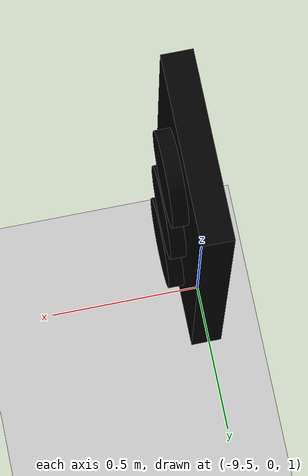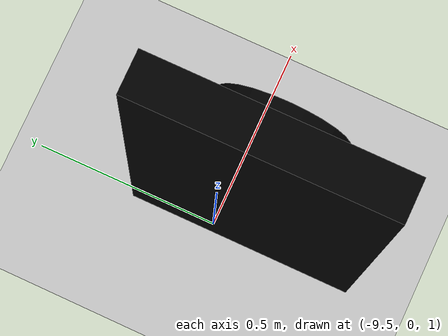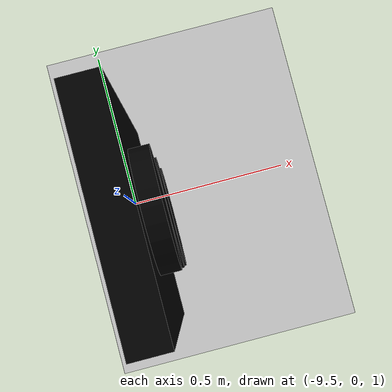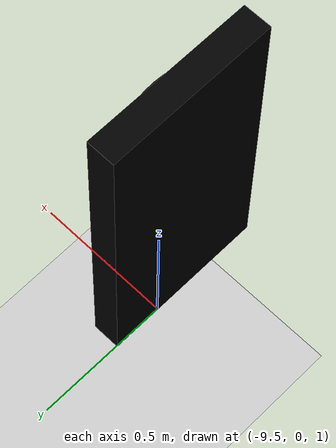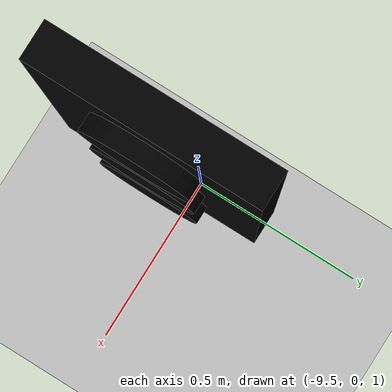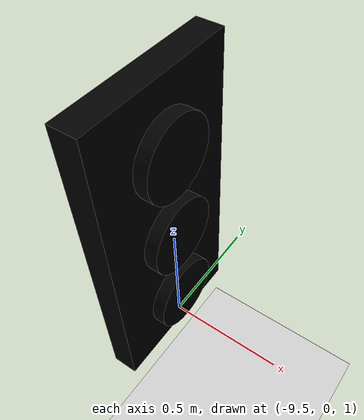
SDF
<sdf version="1.7">
 <world name="default">
  <light name="sun" type="directional">
   <pose>0 0 10 0 -0 0</pose>
   <diffuse>0.8 0.8 0.8 1</diffuse>
   <specular>0.2 0.2 0.2 1</specular>
   <attenuation>
    <range>1000</range>
    <constant>0.9</constant>
    <linear>0.01</linear>
    <quadratic>0.001</quadratic>
   </attenuation>
   <direction>-0.5 0.1 -0.9</direction>
   <spot><inner_angle>0</inner_angle><outer_angle>0</outer_angle><falloff>0</falloff></spot>
  </light>
  <model name="ground_plane">
   <static>1</static>
   <link name="link">
    <collision name="collision">
     <geometry><plane><normal>0 0 1</normal><size>100 100</size></plane></geometry>
     <surface>
      <contact><collide_bitmask>65535</collide_bitmask></contact>
      <friction><ode><mu>100</mu><mu2>50</mu2></ode></friction>
     </surface>
    </collision>
    <visual name="visual">
     <cast_shadows>0</cast_shadows>
     <geometry><plane><normal>0 0 1</normal><size>100 100</size></plane></geometry>
     <material>
      <script><uri>file://media/materials/scripts/gazebo.material</uri><name>Gazebo/Grey</name></script>
     </material>
    </visual>
   </link>
  </model>
  <model name="test_included_traffic_light">
   <pose>-9.48266 0.914428 1.16097 0.00106 -0.001055 -8e-06</pose>
   <plugin name="traffic_light_plugin" filename="libgazebo_traffic_light.so"/>
   <frame name="gazebo_traffic_light::__model__" attached_to="gazebo_traffic_light::light_fixture">
    <pose relative_to="__model__">0 -1 0 0 -0 0</pose>
   </frame>
   <static>0</static>
   <link name="gazebo_traffic_light::light_fixture">
    <gravity>0</gravity>
    <pose relative_to="gazebo_traffic_light::__model__">0 0 0 0 -0 0</pose>
    <visual name="visual">
     <pose>0 0 0.535 0 -0 0</pose>
     <geometry><box><size>0.1 0.6 1.2</size></box></geometry>
     <material><ambient>0 0 0 1</ambient><diffuse>0 0 0 1</diffuse><specular>0 0 0 1</specular></material>
    </visual>
    <collision name="collision">
     <pose>0 0 0.535 0 -0 0</pose>
     <geometry><box><size>0.1 0.6 1.2</size></box></geometry>
    </collision>
    <inertial>
     <inertia><ixx>1</ixx><ixy>0</ixy><ixz>0</ixz><iyy>1</iyy><iyz>0</iyz><izz>1</izz></inertia>
     <mass>1</mass>
    </inertial>
   </link>
   <link name="gazebo_traffic_light::green_off">
    <gravity>0</gravity>
    <pose relative_to="gazebo_traffic_light::__model__">0.075 0 0.175 0 1.5707 0</pose>
    <collision name="collision">
     <geometry><cylinder><radius>0.15</radius><length>0.05</length></cylinder></geometry>
    </collision>
    <visual name="visual">
     <geometry><cylinder><radius>0.15</radius><length>0.05</length></cylinder></geometry>
     <material>
      <ambient>0 1 0 1</ambient>
      <diffuse>0 0 0 1</diffuse>
      <specular>0 0 0 1</specular>
      <emissive>0 0 0 1</emissive>
     </material>
    </visual>
    <inertial>
     <inertia><ixx>1</ixx><ixy>0</ixy><ixz>0</ixz><iyy>1</iyy><iyz>0</iyz><izz>1</izz></inertia>
     <mass>1</mass>
    </inertial>
   </link>
   <link name="gazebo_traffic_light::green_on">
    <gravity>0</gravity>
    <pose relative_to="gazebo_traffic_light::__model__">0 0 0.175 0 1.5707 0</pose>
    <collision name="collision">
     <geometry><cylinder><radius>0.15</radius><length>0.002</length></cylinder></geometry>
    </collision>
    <visual name="visual">
     <geometry><cylinder><radius>0.15</radius><length>0.002</length></cylinder></geometry>
     <material>
      <ambient>0 0 0 1</ambient>
      <diffuse>0 0 0 1</diffuse>
      <specular>0 0 0 1</specular>
      <emissive>0 1 0 1</emissive>
     </material>
    </visual>
    <inertial>
     <inertia><ixx>1</ixx><ixy>0</ixy><ixz>0</ixz><iyy>1</iyy><iyz>0</iyz><izz>1</izz></inertia>
     <mass>1</mass>
    </inertial>
   </link>
   <link name="gazebo_traffic_light::yellow_off">
    <gravity>0</gravity>
    <pose relative_to="gazebo_traffic_light::__model__">0.075 0 0.525 0 1.5707 0</pose>
    <collision name="collision">
     <geometry><cylinder><radius>0.15</radius><length>0.05</length></cylinder></geometry>
    </collision>
    <visual name="visual">
     <geometry><cylinder><radius>0.15</radius><length>0.05</length></cylinder></geometry>
     <material>
      <ambient>1 1 0 1</ambient>
      <diffuse>0 0 0 1</diffuse>
      <specular>0 0 0 1</specular>
      <emissive>0 0 0 1</emissive>
     </material>
    </visual>
    <inertial>
     <inertia><ixx>1</ixx><ixy>0</ixy><ixz>0</ixz><iyy>1</iyy><iyz>0</iyz><izz>1</izz></inertia>
     <mass>1</mass>
    </inertial>
   </link>
   <link name="gazebo_traffic_light::yellow_on">
    <gravity>0</gravity>
    <pose relative_to="gazebo_traffic_light::__model__">0 0 0.525 0 1.5707 0</pose>
    <collision name="collision">
     <geometry><cylinder><radius>0.15</radius><length>0.002</length></cylinder></geometry>
    </collision>
    <visual name="visual">
     <geometry><cylinder><radius>0.15</radius><length>0.002</length></cylinder></geometry>
     <material>
      <ambient>0 0 0 1</ambient>
      <diffuse>0 0 0 1</diffuse>
      <specular>0 0 0 1</specular>
      <emissive>1 1 0 1</emissive>
     </material>
    </visual>
    <inertial>
     <inertia><ixx>1</ixx><ixy>0</ixy><ixz>0</ixz><iyy>1</iyy><iyz>0</iyz><izz>1</izz></inertia>
     <mass>1</mass>
    </inertial>
   </link>
   <link name="gazebo_traffic_light::red_off">
    <gravity>0</gravity>
    <pose relative_to="gazebo_traffic_light::__model__">0.075 0 0.875 0 1.5707 0</pose>
    <collision name="collision">
     <geometry><cylinder><radius>0.15</radius><length>0.05</length></cylinder></geometry>
    </collision>
    <visual name="visual">
     <geometry><cylinder><radius>0.15</radius><length>0.05</length></cylinder></geometry>
     <material>
      <ambient>1 0 0 1</ambient>
      <diffuse>0 0 0 1</diffuse>
      <specular>0 0 0 1</specular>
      <emissive>0 0 0 1</emissive>
     </material>
    </visual>
    <inertial>
     <inertia><ixx>1</ixx><ixy>0</ixy><ixz>0</ixz><iyy>1</iyy><iyz>0</iyz><izz>1</izz></inertia>
     <mass>1</mass>
    </inertial>
   </link>
   <link name="gazebo_traffic_light::red_on">
    <gravity>0</gravity>
    <pose relative_to="gazebo_traffic_light::__model__">0 0 0.875 0 1.5707 0</pose>
    <collision name="collision">
     <geometry><cylinder><radius>0.15</radius><length>0.002</length></cylinder></geometry>
    </collision>
    <visual name="visual">
     <geometry><cylinder><radius>0.15</radius><length>0.002</length></cylinder></geometry>
     <material>
      <ambient>0 0 0 1</ambient>
      <diffuse>0 0 0 1</diffuse>
      <specular>0 0 0 1</specular>
      <emissive>1 0 0 1</emissive>
     </material>
    </visual>
    <inertial>
     <inertia><ixx>1</ixx><ixy>0</ixy><ixz>0</ixz><iyy>1</iyy><iyz>0</iyz><izz>1</izz></inertia>
     <mass>1</mass>
    </inertial>
   </link>
   <joint name="gazebo_traffic_light::green_switch" type="prismatic">
    <parent>gazebo_traffic_light::green_off</parent>
    <child>gazebo_traffic_light::green_on</child>
    <axis>
     <xyz>0 0 1</xyz>
     <limit><lower>0</lower><upper>0.101</upper></limit>
     <dynamics><spring_reference>0</spring_reference><spring_stiffness>0</spring_stiffness></dynamics>
    </axis>
   </joint>
   <joint name="gazebo_traffic_light::green_base" type="fixed">
    <parent>gazebo_traffic_light::light_fixture</parent>
    <child>gazebo_traffic_light::green_off</child>
   </joint>
   <joint name="gazebo_traffic_light::yellow_switch" type="prismatic">
    <parent>gazebo_traffic_light::yellow_off</parent>
    <child>gazebo_traffic_light::yellow_on</child>
    <axis>
     <xyz>0 0 1</xyz>
     <limit><lower>0</lower><upper>0.101</upper></limit>
     <dynamics><spring_reference>0</spring_reference><spring_stiffness>0</spring_stiffness></dynamics>
    </axis>
   </joint>
   <joint name="gazebo_traffic_light::yellow_base" type="fixed">
    <parent>gazebo_traffic_light::light_fixture</parent>
    <child>gazebo_traffic_light::yellow_off</child>
   </joint>
   <joint name="gazebo_traffic_light::red_switch" type="prismatic">
    <parent>gazebo_traffic_light::red_off</parent>
    <child>gazebo_traffic_light::red_on</child>
    <axis>
     <xyz>0 0 1</xyz>
     <limit><lower>0</lower><upper>0.101</upper></limit>
     <dynamics><spring_reference>0</spring_reference><spring_stiffness>0</spring_stiffness></dynamics>
    </axis>
   </joint>
   <joint name="gazebo_traffic_light::red_base" type="fixed">
    <parent>gazebo_traffic_light::light_fixture</parent>
    <child>gazebo_traffic_light::red_off</child>
   </joint>
  </model>
  <gravity>0 0 -9.8</gravity>
  <magnetic_field>6e-06 2.3e-05 -4.2e-05</magnetic_field>
  <atmosphere type="adiabatic"/>
  <physics type="ode">
   <max_step_size>0.001</max_step_size>
   <real_time_factor>1</real_time_factor>
   <real_time_update_rate>1000</real_time_update_rate>
  </physics>
  <scene><ambient>0.4 0.4 0.4 1</ambient><background>0.7 0.7 0.7 1</background><shadows>1</shadows></scene>
  <spherical_coordinates>
   <surface_model>EARTH_WGS84</surface_model>
   <latitude_deg>0</latitude_deg>
   <longitude_deg>0</longitude_deg>
   <elevation>0</elevation>
   <heading_deg>0</heading_deg>
  </spherical_coordinates>
 </world>
</sdf>
